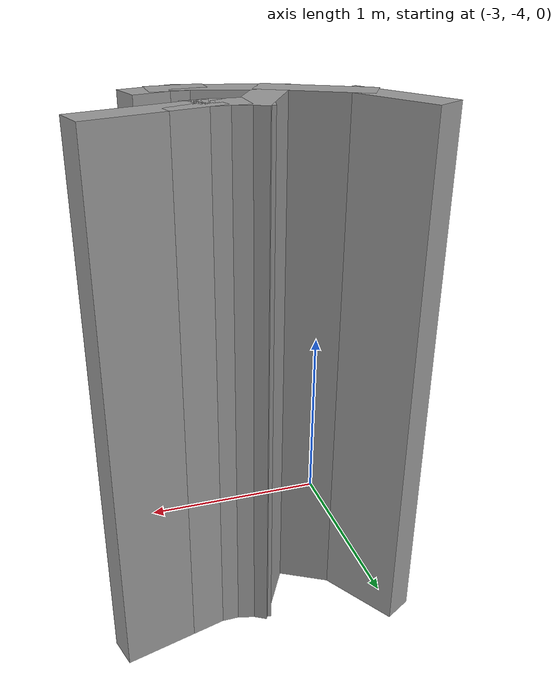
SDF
<?xml version='1.0'?>
<sdf version='1.7'>
  <model name='Untitled'>
    <pose>-1.54976 -1.77811 0 0 -0 0</pose>
    <link name='Wall_0'>
      <collision name='Wall_0_Collision'>
        <geometry>
          <box>
            <size>0.5 0.15 2.5</size>
          </box>
        </geometry>
        <pose>0 0 1.25 0 -0 0</pose>
      </collision>
      <visual name='Wall_0_Visual'>
        <pose>0 0 1.25 0 -0 0</pose>
        <geometry>
          <box>
            <size>0.5 0.15 2.5</size>
          </box>
        </geometry>
        <material>
          <script>
            <uri>file://media/materials/scripts/gazebo.material</uri>
            <name>Gazebo/Grey</name>
          </script>
          <ambient>1 1 1 1</ambient>
        </material>
        <meta>
          <layer>0</layer>
        </meta>
      </visual>
      <pose>-1.12076 -1.50817 0 0 -0 2.61799</pose>
    </link>
    <link name='Wall_1'>
      <collision name='Wall_1_Collision'>
        <geometry>
          <box>
            <size>0.5 0.15 2.5</size>
          </box>
        </geometry>
        <pose>0 0 1.25 0 -0 0</pose>
      </collision>
      <visual name='Wall_1_Visual'>
        <pose>0 0 1.25 0 -0 0</pose>
        <geometry>
          <box>
            <size>0.5 0.15 2.5</size>
          </box>
        </geometry>
        <material>
          <script>
            <uri>file://media/materials/scripts/gazebo.material</uri>
            <name>Gazebo/Grey</name>
          </script>
          <ambient>1 1 1 1</ambient>
        </material>
        <meta>
          <layer>0</layer>
        </meta>
      </visual>
      <pose>-1.35981 -1.26912 0 0 -0 2.0944</pose>
    </link>
    <link name='Wall_10'>
      <collision name='Wall_10_Collision'>
        <geometry>
          <box>
            <size>0.25 0.15 2.5</size>
          </box>
        </geometry>
        <pose>0 0 1.25 0 -0 0</pose>
      </collision>
      <visual name='Wall_10_Visual'>
        <pose>0 0 1.25 0 -0 0</pose>
        <geometry>
          <box>
            <size>0.25 0.15 2.5</size>
          </box>
        </geometry>
        <material>
          <script>
            <uri>file://media/materials/scripts/gazebo.material</uri>
            <name>Gazebo/Grey</name>
          </script>
          <ambient>1 1 1 1</ambient>
        </material>
        <meta>
          <layer>0</layer>
        </meta>
      </visual>
      <pose>-0.549313 -1.3055 0 0 -0 0.261799</pose>
    </link>
    <link name='Wall_11'>
      <collision name='Wall_11_Collision'>
        <geometry>
          <box>
            <size>0.5 0.15 2.5</size>
          </box>
        </geometry>
        <pose>0 0 1.25 0 -0 0</pose>
      </collision>
      <visual name='Wall_11_Visual'>
        <pose>0 0 1.25 0 -0 0</pose>
        <geometry>
          <box>
            <size>0.5 0.15 2.5</size>
          </box>
        </geometry>
        <material>
          <script>
            <uri>file://media/materials/scripts/gazebo.material</uri>
            <name>Gazebo/Grey</name>
          </script>
          <ambient>1 1 1 1</ambient>
        </material>
        <meta>
          <layer>0</layer>
        </meta>
      </visual>
      <pose>-0.33198 -1.24727 0 0 -0 0.261799</pose>
    </link>
    <link name='Wall_3'>
      <collision name='Wall_3_Collision'>
        <geometry>
          <box>
            <size>0.5 0.15 2.5</size>
          </box>
        </geometry>
        <pose>0 0 1.25 0 -0 0</pose>
      </collision>
      <visual name='Wall_3_Visual'>
        <pose>0 0 1.25 0 -0 0</pose>
        <geometry>
          <box>
            <size>0.5 0.15 2.5</size>
          </box>
        </geometry>
        <material>
          <script>
            <uri>file://media/materials/scripts/gazebo.material</uri>
            <name>Gazebo/Grey</name>
          </script>
          <ambient>1 1 1 1</ambient>
        </material>
        <meta>
          <layer>0</layer>
        </meta>
      </visual>
      <pose>-0.800165 -1.64096 0 0 -0 -0.261799</pose>
    </link>
    <link name='Wall_4'>
      <collision name='Wall_4_Collision'>
        <geometry>
          <box>
            <size>0.25 0.15 2.5</size>
          </box>
        </geometry>
        <pose>0 0 1.25 0 -0 0</pose>
      </collision>
      <visual name='Wall_4_Visual'>
        <pose>0 0 1.25 0 -0 0</pose>
        <geometry>
          <box>
            <size>0.25 0.15 2.5</size>
          </box>
        </geometry>
        <material>
          <script>
            <uri>file://media/materials/scripts/gazebo.material</uri>
            <name>Gazebo/Grey</name>
          </script>
          <ambient>1 1 1 1</ambient>
        </material>
        <meta>
          <layer>0</layer>
        </meta>
      </visual>
      <pose>-0.581128 -1.68626 0 0 -0 0</pose>
    </link>
    <link name='Wall_5'>
      <collision name='Wall_5_Collision'>
        <geometry>
          <box>
            <size>0.25 0.15 2.5</size>
          </box>
        </geometry>
        <pose>0 0 1.25 0 -0 0</pose>
      </collision>
      <visual name='Wall_5_Visual'>
        <pose>0 0 1.25 0 -0 0</pose>
        <geometry>
          <box>
            <size>0.25 0.15 2.5</size>
          </box>
        </geometry>
        <material>
          <script>
            <uri>file://media/materials/scripts/gazebo.material</uri>
            <name>Gazebo/Grey</name>
          </script>
          <ambient>1 1 1 1</ambient>
        </material>
        <meta>
          <layer>0</layer>
        </meta>
      </visual>
      <pose>-0.482832 -1.67332 0 0 -0 0.261799</pose>
    </link>
    <link name='Wall_7'>
      <collision name='Wall_7_Collision'>
        <geometry>
          <box>
            <size>0.5 0.15 2.5</size>
          </box>
        </geometry>
        <pose>0 0 1.25 0 -0 0</pose>
      </collision>
      <visual name='Wall_7_Visual'>
        <pose>0 0 1.25 0 -0 0</pose>
        <geometry>
          <box>
            <size>0.5 0.15 2.5</size>
          </box>
        </geometry>
        <material>
          <script>
            <uri>file://media/materials/scripts/gazebo.material</uri>
            <name>Gazebo/Grey</name>
          </script>
          <ambient>1 1 1 1</ambient>
        </material>
        <meta>
          <layer>0</layer>
        </meta>
      </visual>
      <pose>-0.881702 -1.44412 0 0 -0 1.0472</pose>
    </link>
    <link name='Wall_8'>
      <collision name='Wall_8_Collision'>
        <geometry>
          <box>
            <size>0.25 0.15 2.5</size>
          </box>
        </geometry>
        <pose>0 0 1.25 0 -0 0</pose>
      </collision>
      <visual name='Wall_8_Visual'>
        <pose>0 0 1.25 0 -0 0</pose>
        <geometry>
          <box>
            <size>0.25 0.15 2.5</size>
          </box>
        </geometry>
        <material>
          <script>
            <uri>file://media/materials/scripts/gazebo.material</uri>
            <name>Gazebo/Grey</name>
          </script>
          <ambient>1 1 1 1</ambient>
        </material>
        <meta>
          <layer>0</layer>
        </meta>
      </visual>
      <pose>-0.745906 -1.3055 0 0 -0 -0.261799</pose>
    </link>
    <link name='Wall_9'>
      <collision name='Wall_9_Collision'>
        <geometry>
          <box>
            <size>0.25 0.15 2.5</size>
          </box>
        </geometry>
        <pose>0 0 1.25 0 -0 0</pose>
      </collision>
      <visual name='Wall_9_Visual'>
        <pose>0 0 1.25 0 -0 0</pose>
        <geometry>
          <box>
            <size>0.25 0.15 2.5</size>
          </box>
        </geometry>
        <material>
          <script>
            <uri>file://media/materials/scripts/gazebo.material</uri>
            <name>Gazebo/Grey</name>
          </script>
          <ambient>1 1 1 1</ambient>
        </material>
        <meta>
          <layer>0</layer>
        </meta>
      </visual>
      <pose>-0.64761 -1.31844 0 0 -0 0</pose>
    </link>
    <static>1</static>
  </model>
</sdf>
